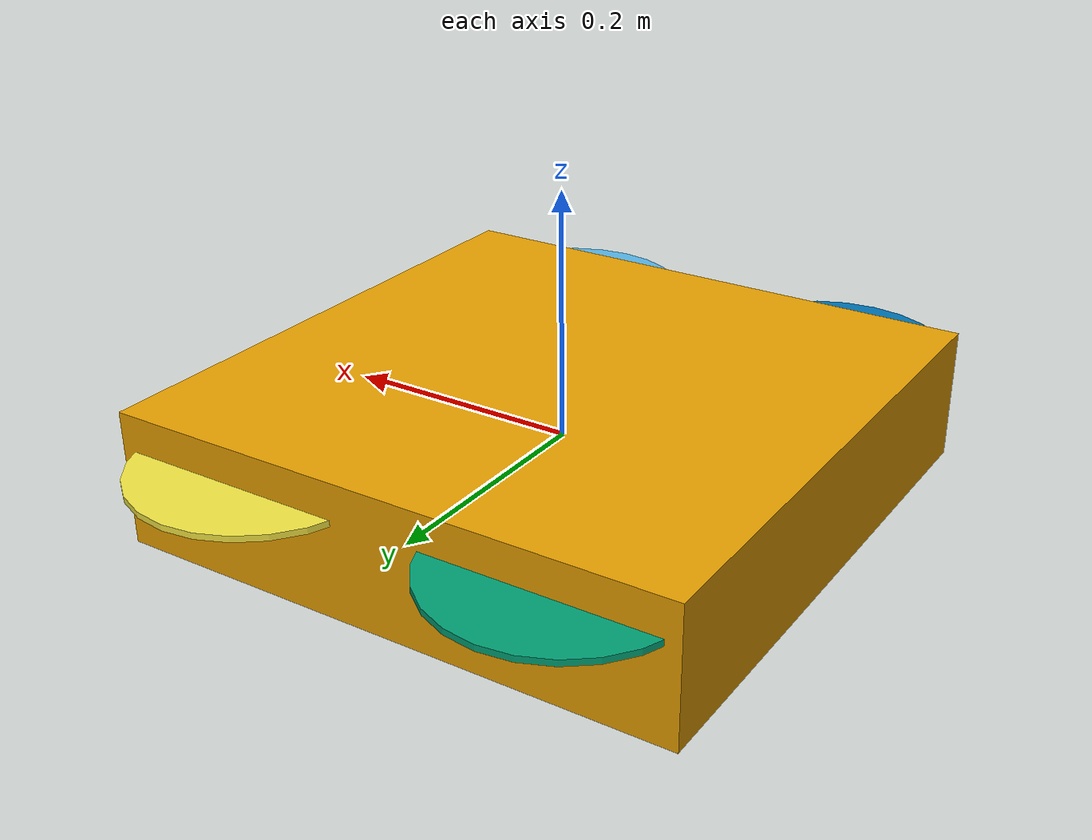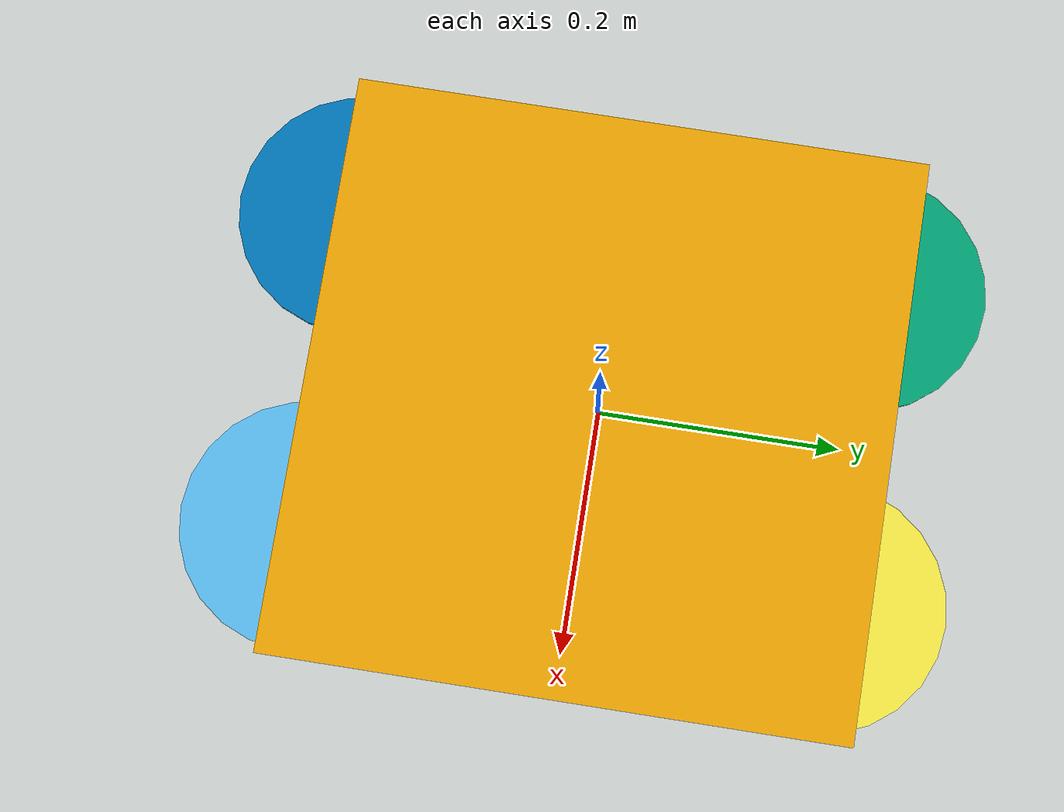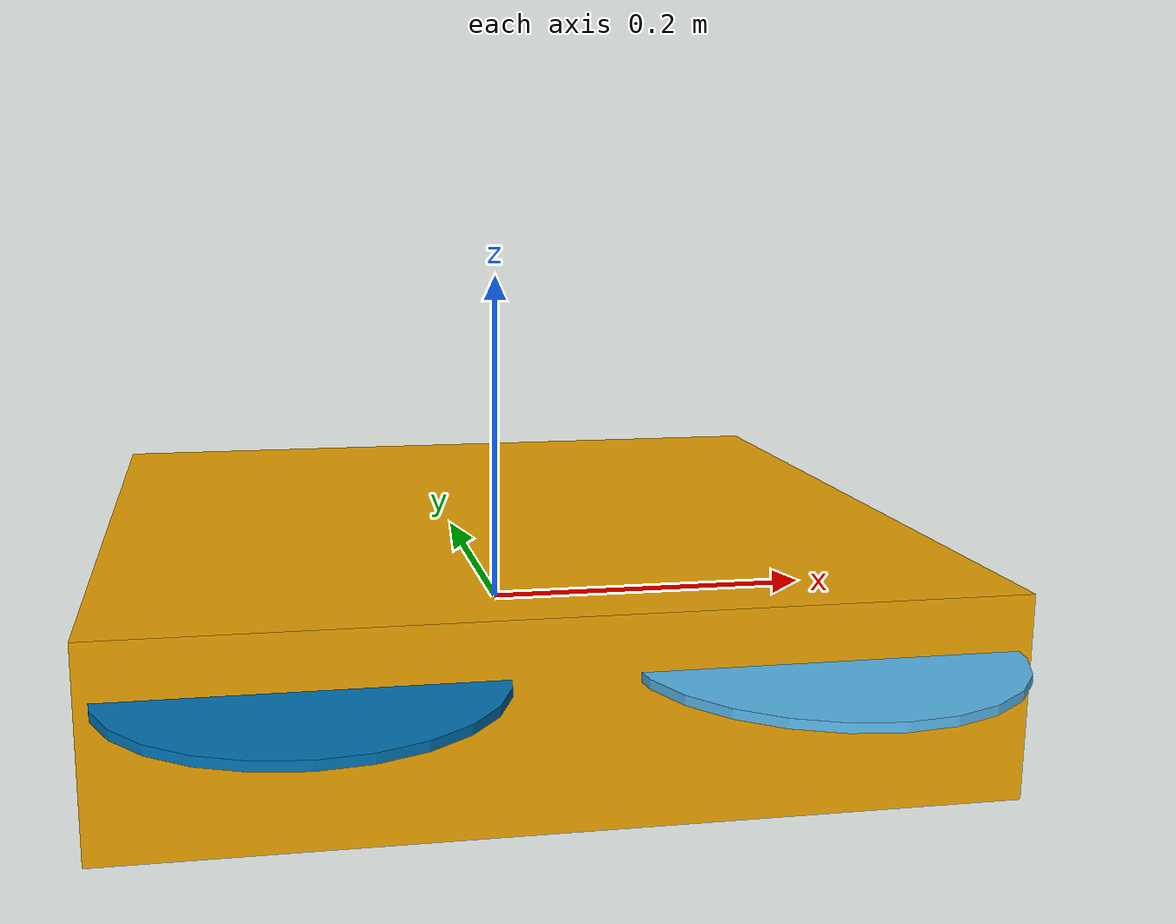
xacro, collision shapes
<?xml version="1.0"?>
<robot xmlns:xacro="http://www.ros.org/wiki/xacro" name="x3_robot">

  <!-- Base Link -->
  <link name="base_link">
    <inertial>
      <mass value="1.5"/>
      <origin xyz="0 0 0"/>
      <inertia ixx="0.0347563" ixy="0" ixz="0" iyy="0.07" iyz="0" izz="0.0977"/>
    </inertial>
    <visual>
      <origin xyz="0 0 0" rpy="0 0 0"/>
      <geometry>
        <mesh filename="https://fuel.gazebosim.org/1.0/OpenRobotics/models/x3 uav/4/files/meshes/x3.dae"/>
      </geometry>
    </visual>
    <collision>
      <origin xyz="0 0 0" rpy="0 0 0"/>
      <geometry>
        <box size="0.47 0.47 0.11"/>
      </geometry>
    </collision>
  </link>

  <!-- Propeller Template -->
  <!-- You can copy-paste this block with modified joint name and position -->
  <xacro:macro name="rotor" params="name x y z mesh">
    <link name="${name}">
      <inertial>
        <mass value="0.005"/>
        <origin xyz="0 0 0"/>
        <inertia ixx="9.75e-07" ixy="0" ixz="0" iyy="4.17041e-05" iyz="0" izz="4.26041e-05"/>
      </inertial>
      <visual>
        <geometry>
          <mesh filename="${mesh}" scale="0.1 0.1 0.1"/>
        </geometry>
      </visual>
      <collision>
        <geometry>
          <cylinder radius="0.1" length="0.005"/>
        </geometry>
      </collision>
    </link>
    <joint name="X3/${name}_joint" type="revolute">
      <parent link="base_link"/>
      <child link="${name}"/>
      <origin xyz="${x} ${y} ${z}" rpy="0 0 0"/>
      <axis xyz="0 0 1"/>
      <limit lower="-1e16" upper="1e16" effort="100" velocity="100"/>
    </joint>
  </xacro:macro>

  <!-- Use the macro to define rotors -->
  <xacro:rotor name="rotor_0" x="0.13" y="-0.22" z="0.023" mesh="https://fuel.gazebosim.org/1.0/OpenRobotics/models/x3 uav/4/files/meshes/propeller_ccw.dae"/>
  <xacro:rotor name="rotor_1" x="-0.13" y="0.2" z="0.023" mesh="https://fuel.gazebosim.org/1.0/OpenRobotics/models/x3 uav/4/files/meshes/propeller_ccw.dae"/>
  <xacro:rotor name="rotor_2" x="0.13" y="0.2" z="0.023" mesh="https://fuel.gazebosim.org/1.0/OpenRobotics/models/x3 uav/4/files/meshes/propeller_cw.dae"/>
  <xacro:rotor name="rotor_3" x="-0.13" y="-0.22" z="0.023" mesh="https://fuel.gazebosim.org/1.0/OpenRobotics/models/x3 uav/4/files/meshes/propeller_cw.dae"/>

</robot>
